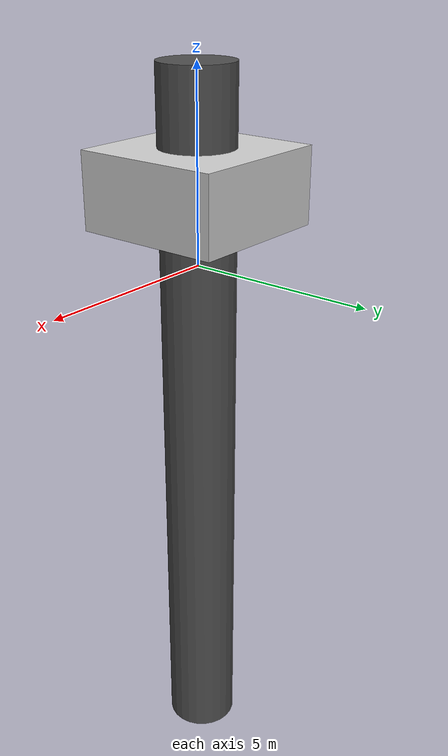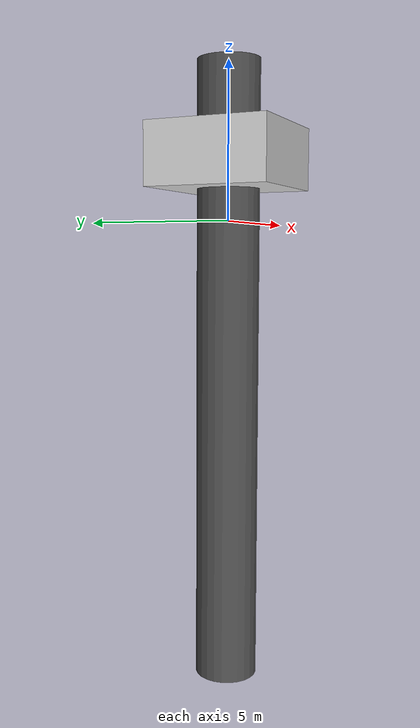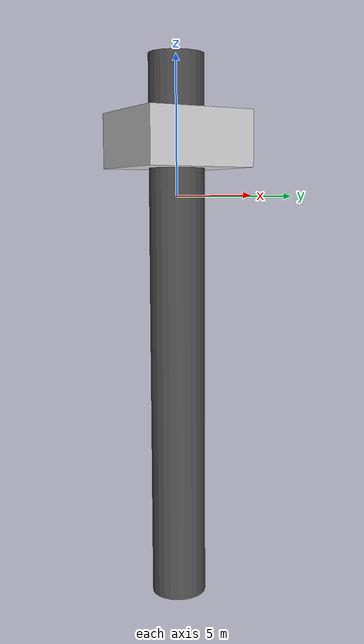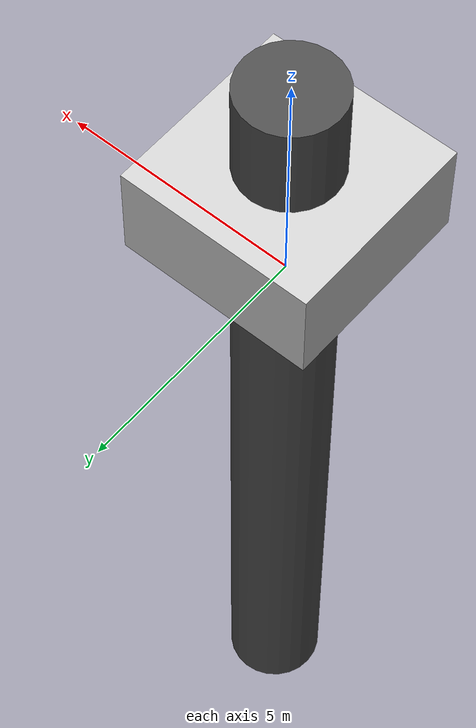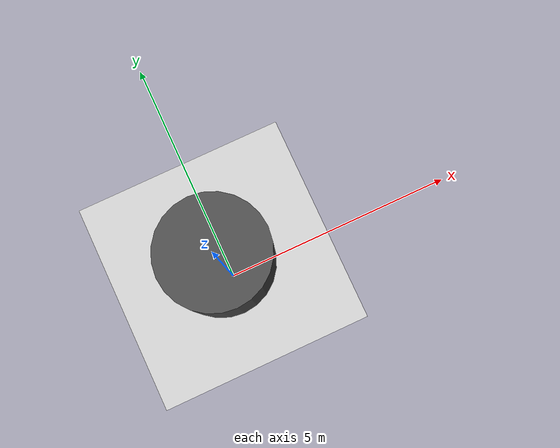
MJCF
<mujoco>
  <option gravity="0 0 -9.81"/>
  <worldbody>
    <body name="elevator" pos="0 0 2">
      <geom type="box" size="2 2 1" rgba="0.8 0.8 0.8 1"/>
      <joint name="elevator_joint" type="slide" axis="0 0 1" damping="0.5"/>
    </body>
    <body name="block" pos="0 0 3">
      <geom type="box" size="0.5 0.5 0.5" density="1" rgba="0 0 1 1"/>
    </body>
    <body name="scale" pos="0 0 1.5">
      <geom type="box" size="0.5 0.5 0.1" rgba="0.7 0.7 0.7 1"/>
    </body>
    <body name="shaft" pos="0 0 -5">
      <geom type="cylinder" size="1 10" rgba="0.3 0.3 0.3 1"/>
    </body>
  </worldbody>
</mujoco>
